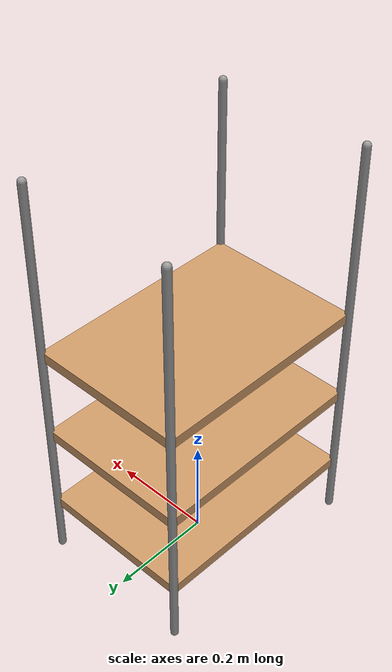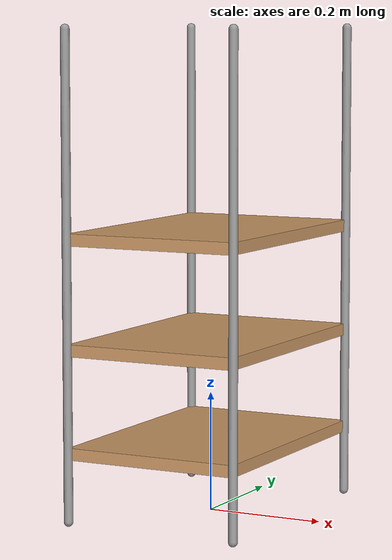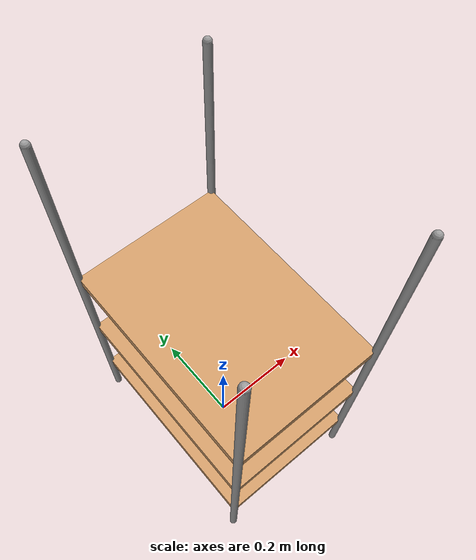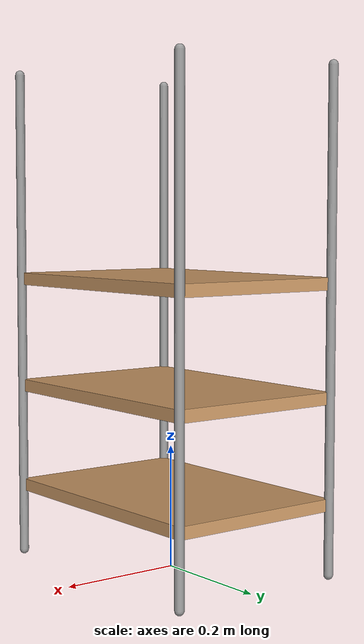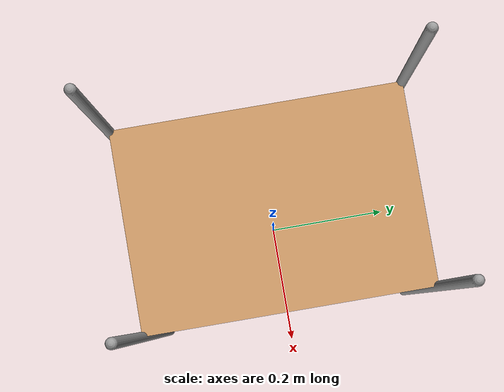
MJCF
<mujoco model="MuJoCo Model">
  <compiler angle="radian"/>

  <worldbody>
    <body name="tube_0" pos="0.15 0.215 0.4075">
      <geom name="tube_0" size="0.0075 0.4" type="capsule" density="100" rgba="0.6 0.6 0.6 1"/>
    </body>
    <body name="tube_1" pos="0.15 -0.215 0.4075">
      <geom name="tube_1" size="0.0075 0.4" type="capsule" density="100" rgba="0.6 0.6 0.6 1"/>
    </body>
    <body name="tube_2" pos="-0.15 0.215 0.4075">
      <geom name="tube_2" size="0.0075 0.4" type="capsule" density="100" rgba="0.6 0.6 0.6 1"/>
    </body>
    <body name="tube_3" pos="-0.15 -0.215 0.4075">
      <geom name="tube_3" size="0.0075 0.4" type="capsule" density="100" rgba="0.6 0.6 0.6 1"/>
    </body>
    <body name="planck_0" pos="0 0 0.12">
      <geom name="planck_0" size="0.15 0.215 0.01" type="box" density="100" rgba="0.8 0.6 0.4 1"/>
    </body>
    <body name="planck_1" pos="0 0 0.29">
      <geom name="planck_1" size="0.15 0.215 0.01" type="box" density="100" rgba="0.8 0.6 0.4 1"/>
    </body>
    <body name="planck_2" pos="0 0 0.47">
      <geom name="obj" size="0.15 0.215 0.01" type="box" density="100" rgba="0.8 0.6 0.4 1"/>
    </body>
  </worldbody>
</mujoco>
